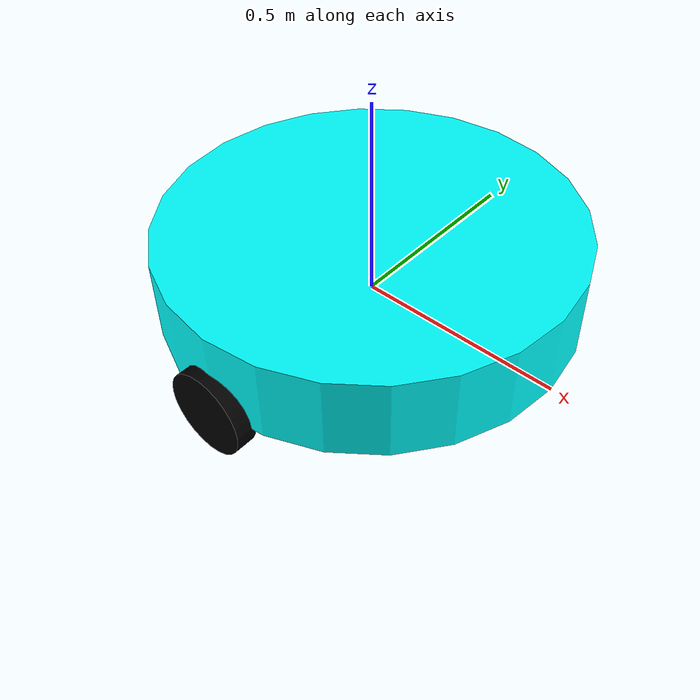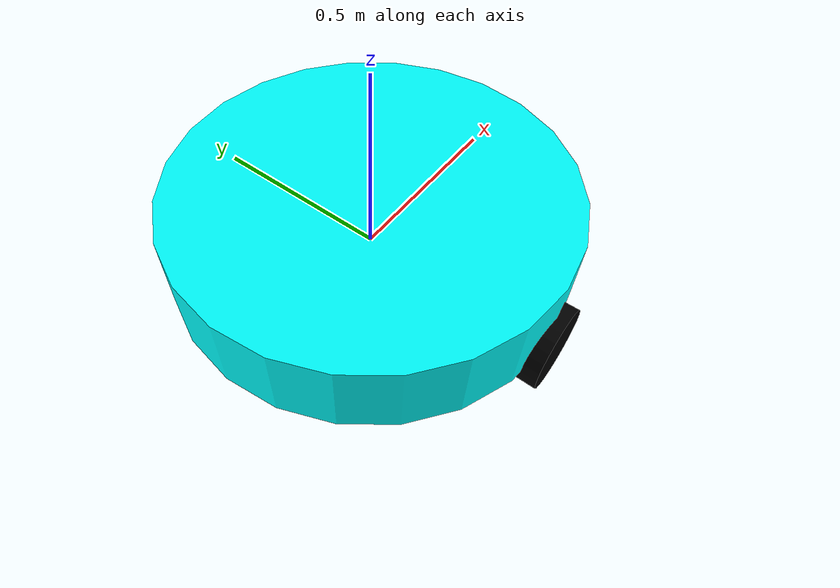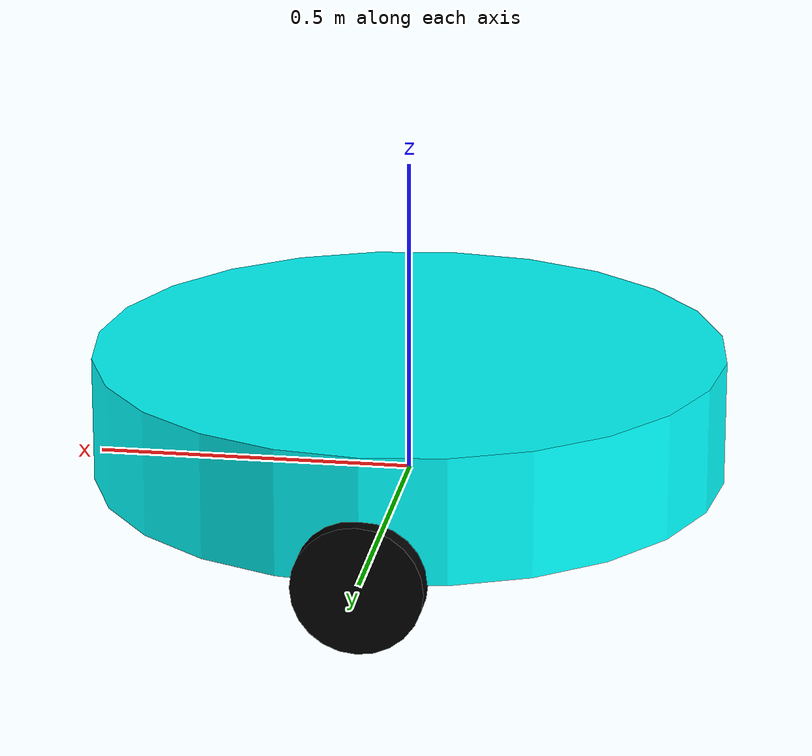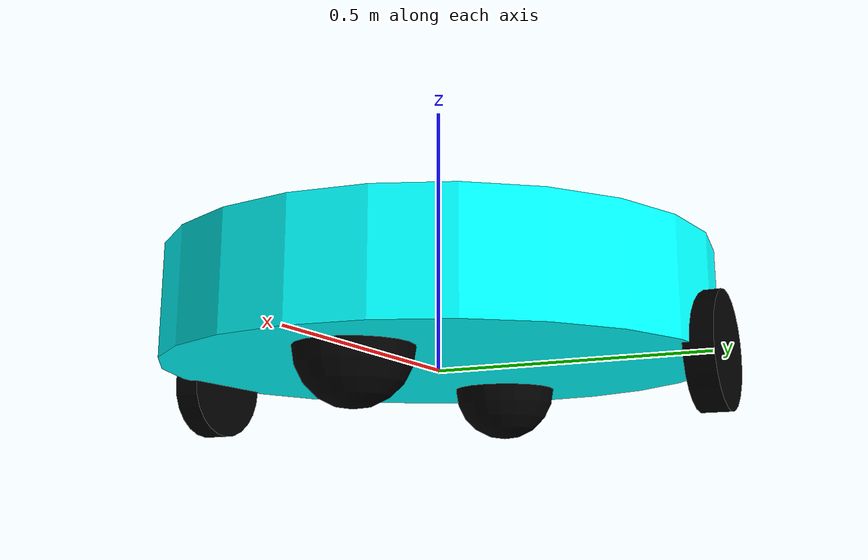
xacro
<?xml version="1.0"?>
<robot xmlns:xacro="http://www.ros.org/wiki/xacro">
    <xacro:include filename="$(find my_bot)/description/inertial_macros.xacro"/>

    <material name="white">
        <color rgba="1 1 1 1" />
    </material>

    <material name="orange">
        <color rgba="1 0.3 0.1 1"/>
    </material>

    <material name="blue">
        <color rgba="0.2 0.2 1 1"/>
    </material>

    <material name="black">
        <color rgba="0 0 0 1"/>
    </material>

    <material name="red">
        <color rgba="1 0 0 1"/>
    </material>

    <material name="gray">
        <color rgba="0.6 0.6 0.6 1"/>
    </material>

    <material name="dark_gray">
        <color rgba="0.3 0.3 0.3 1"/>
    </material>

    <material name="light_gray">
        <color rgba="0.8 0.8 0.8 1"/>
    </material>

    <material name="yellow">
        <color rgba="1 1 0 1"/>
    </material>

    <material name="green">
        <color rgba="0 1 0 1"/>
    </material>

    <material name="cyan">
        <color rgba="0 1 1 1"/>
    </material>

    <material name="magenta">
        <color rgba="1 0 1 1"/>
    </material>

    <material name="transparent_red">
        <color rgba="1 0 0 0.4"/>
    </material>

    <material name="transparent_blue">
        <color rgba="0 0 1 0.4"/>
    </material>

    <material name="transparent_green">
        <color rgba="0 1 0 0.4"/>
    </material>

    <material name="transparent_gray">
        <color rgba="0.5 0.5 0.5 0.4"/>
    </material>

    <!-- base link-->

    <link name="base_link">

    </link>

    <!-- chassis link -->

    <joint name="chassis_joint" type="fixed">
        <parent link="base_link"/>
        <child link="chassis_link"/>
        <origin xyz="0 0 0" rpy="0 0 0"/>
    </joint>

    <link name="chassis_link">
        <visual>
            <origin xyz="0 0 0.1" rpy="0 0 0"/>
            <geometry>
                <cylinder radius="0.5" length="0.2"/>
            </geometry>
            <material name="cyan"/>
        </visual>
        <collision>
            <origin xyz="0 0 0.1" rpy="0 0 0"/>
            <geometry>
                <cylinder radius="0.5" length="0.2"/>
            </geometry>
            <material name="cyan"/>
        </collision>
        <xacro:inertial_cylinder mass="5" length="0.2" radius="0.5">
            <origin xyz="0 0 0.1" rpy="0 0 0"/>
        </xacro:inertial_cylinder>
    </link>

    <gazebo reference="chassis_link">
        <material>Gazebo/White</material>
    </gazebo>

    <!-- left wheel link-->
    <joint name="left_wheel_joint" type="continuous">
        <parent link="base_link"/>
        <child link="left_wheel_link"/>
        <origin xyz="0 0.5 0" rpy="-${pi/2} 0 0"/>
        <axis xyz="0 0 1"/>
    </joint>

    <link name="left_wheel_link">
        <visual>
            <geometry>
                <cylinder radius="0.1" length="0.05"/>
            </geometry>
            <material name="black"/>
        </visual>
        <collision>
            <geometry>
                <cylinder radius="0.1" length="0.05"/>
            </geometry>
            <material name="black"/>
        </collision>
        <xacro:inertial_cylinder mass="1" length="0.05" radius="0.1">
            <origin xyz="0 0 0" rpy="0 0 0"/>
        </xacro:inertial_cylinder>
    </link>

    <gazebo reference="left_wheel_link">
        <material>Gazebo/Black</material>
    </gazebo>

    <gazebo reference="left_wheel_link">
        <mu1>1.0</mu1>
        <mu2>1.0</mu2>
    </gazebo>

    <gazebo reference="right_wheel_link">
        <mu1>1.0</mu1>
        <mu2>1.0</mu2>
    </gazebo>

    <!-- right wheel link-->
    <joint name="right_wheel_joint" type="continuous">
        <parent link="base_link"/>
        <child link="right_wheel_link"/>
        <origin xyz="0 -0.5 0" rpy="${pi/2} 0 0"/>
        <axis xyz="0 0 1"/>
    </joint>

    <link name="right_wheel_link">
        <visual>
            <geometry>
                <cylinder radius="0.1" length="0.05"/>
            </geometry>
            <material name="black"/>
        </visual>
        <collision>
            <geometry>
                <cylinder radius="0.1" length="0.05"/>
            </geometry>
            <material name="black"/>
        </collision>
        <xacro:inertial_cylinder mass="1" length="0.05" radius="0.1">
            <origin xyz="0 0 0" rpy="0 0 0"/>
        </xacro:inertial_cylinder>
    </link>

    <gazebo reference="right_wheel_link">
        <material>Gazebo/Black</material>
    </gazebo>

    <!--caster wheel limk-->
    <joint name="back_caster_wheel_joint" type="fixed">
        <parent link="base_link"/>
        <child link="back_caster_wheel_link"/>
        <origin xyz="-0.3 0 0" rpy="0 0 0"/>
    </joint>
    <link name="back_caster_wheel_link">
        <visual>
            <geometry>
                <sphere radius="0.1"/>
            </geometry>
            <material name="black"/>
        </visual>
        <collision>
            <geometry>
                <sphere radius="0.1"/>
            </geometry>
            <material name="black"/>
        </collision>
        <xacro:inertial_sphere mass="0.5" radius="0.1">
            <origin xyz="0 0 0" rpy="0 0 0"/>
        </xacro:inertial_sphere>
    </link>

    <gazebo reference="back_caster_wheel_link">
        <material>Gazebo/Black</material>
    </gazebo>

    <joint name="front_caster_wheel_joint" type="fixed">
        <parent link="base_link"/>
        <child link="front_caster_wheel_link"/>
        <origin xyz="0.3 0 0" rpy="0 0 0"/>
    </joint>
    <link name="front_caster_wheel_link">
        <visual>
            <geometry>
                <sphere radius="0.1"/>
            </geometry>
            <material name="black"/>
        </visual>
        <collision>
            <geometry>
                <sphere radius="0.1"/>
            </geometry>
            <material name="black"/>
        </collision>
        <xacro:inertial_sphere mass="0.5" radius="0.1">
            <origin xyz="0 0 0" rpy="0 0 0"/>
        </xacro:inertial_sphere>
    </link>

    <gazebo reference="front_caster_wheel_link">
        <material>Gazebo/Black</material>
    </gazebo>

    <gazebo reference="front_caster_wheel_link">
        <mu1>0.01</mu1>
        <mu2>0.01</mu2>
    </gazebo>

    <gazebo reference="back_caster_wheel_link">
        <mu1>0.01</mu1>
        <mu2>0.01</mu2>
    </gazebo>

</robot>
